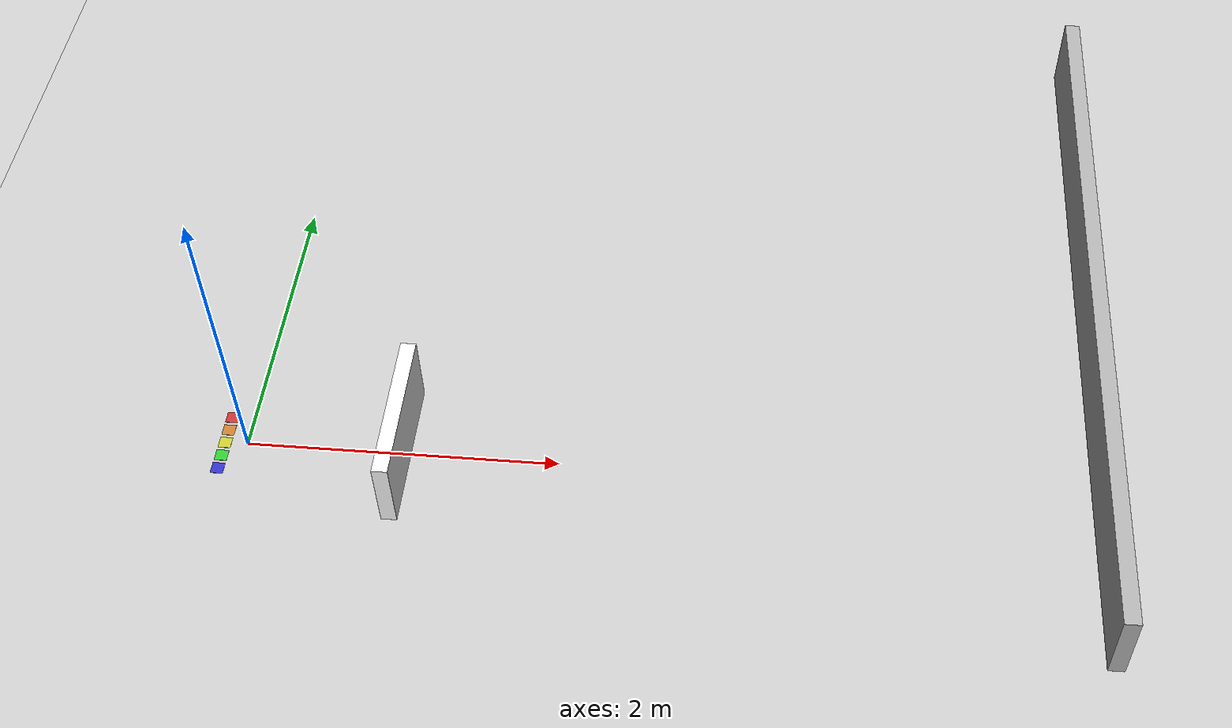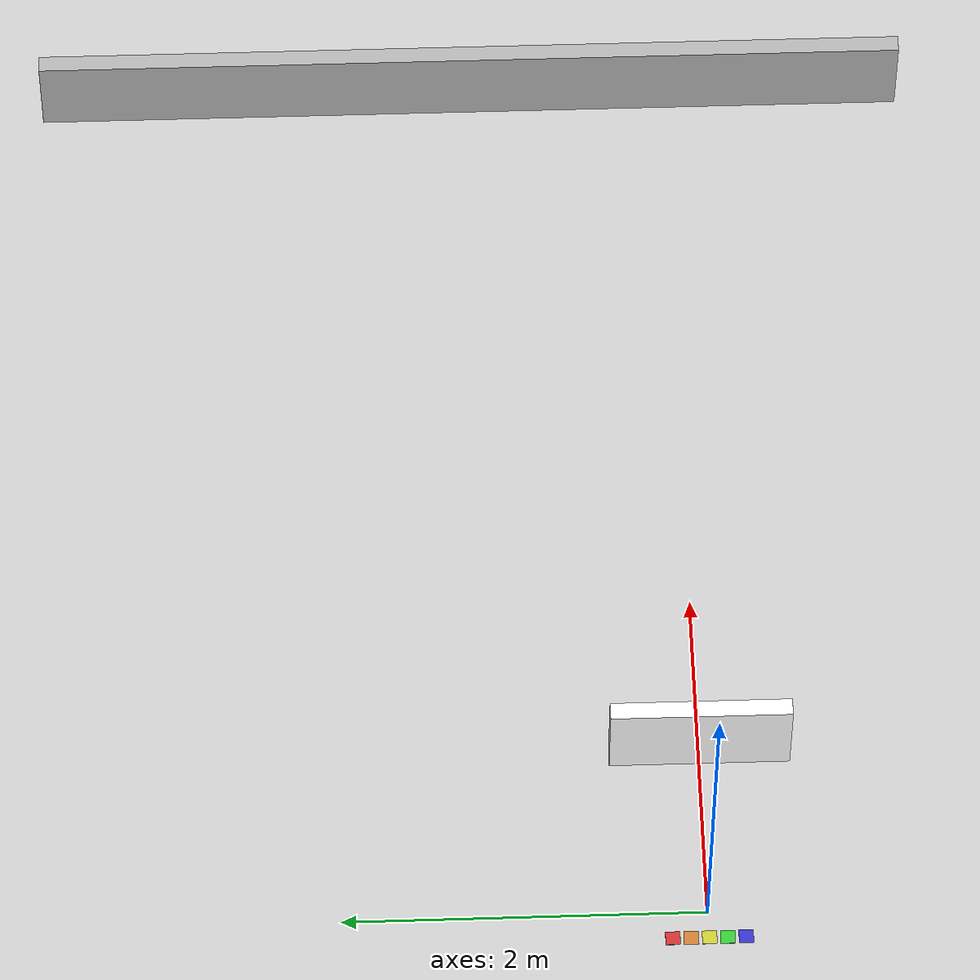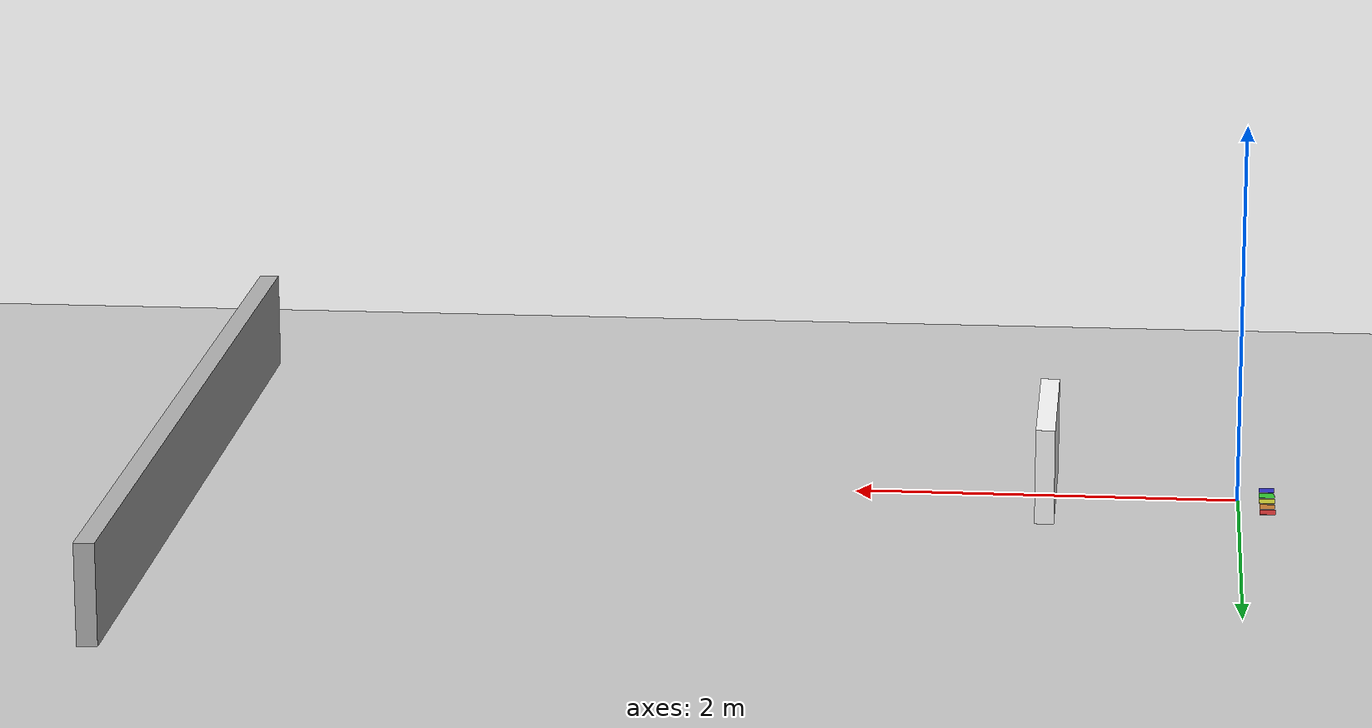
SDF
<?xml version="1.0" ?>
<sdf version='1.10'>
  <world name='final'>
    <physics name='1ms' type='ignored'>
      <max_step_size>0.01</max_step_size>
      <real_time_factor>1</real_time_factor>
      <real_time_update_rate>500</real_time_update_rate>
    </physics>
    <plugin name='gz::sim::systems::Physics' filename='gz-sim-physics-system'/>
    <plugin name='gz::sim::systems::UserCommands' filename='gz-sim-user-commands-system'/>
    <plugin name='gz::sim::systems::SceneBroadcaster' filename='gz-sim-scene-broadcaster-system'/>
    <plugin name='gz::sim::systems::Contact' filename='gz-sim-contact-system'/>
    <plugin name="gz::sim::systems::Sensors" filename="gz-sim-sensors-system">
      <render_engine>ogre2</render_engine>
    </plugin>
    <gravity>0 0 -9.8000000000000007</gravity>
    <magnetic_field>5.5644999999999998e-06 2.2875799999999999e-05 -4.2388400000000002e-05</magnetic_field>
    <atmosphere type='adiabatic'/>
    <scene>
      <ambient>0.400000006 0.400000006 0.400000006 1</ambient>
      <background>0.699999988 0.699999988 0.699999988 1</background>
      <shadows>true</shadows>
    </scene>
    <gui>
      <camera name='user_camera'>
        <pose>0 0 10 0 -1.5700000000004057 0</pose>
      </camera>
    </gui>

<model name='front_wall'>
      <pose>1.0 0 0.25 0 0 0</pose>
      <static>true</static>
      <link name='wall_link'>
        <!-- 벽 본체 -->
        <collision name='wall_collision'>
          <geometry>
            <box>
              <size>0.1 1.0 0.5</size>
            </box>
          </geometry>
        </collision>
        <visual name='wall_visual'>
          <geometry>
            <box>
              <size>0.1 1.0 0.5</size>
            </box>
          </geometry>
          <material>
            <!-- 순수한 흰색으로 설정 -->
            <ambient>1 1 1 1</ambient>
            <diffuse>1 1 1 1</diffuse>
            <specular>0.1 0.1 0.1 1</specular>
          </material>
        </visual>

      </link>
    </model>

    <model name='ground_plan_a'>
      <static>true</static>
      <link name='link'>
        <collision name='collision'>
          <geometry>
            <plane>
              <normal>0 0 1</normal>
              <size>100 100</size>
            </plane>
          </geometry>
          <surface>
            <friction>
              <ode/>
            </friction>
            <bounce/>
            <contact/>
          </surface>
        </collision>
        <visual name='visual'>
          <geometry>
            <plane>
              <normal>0 0 1</normal>
              <size>100 100</size>
            </plane>
          </geometry>
          <material>
            <ambient>0.800000012 0.800000012 0.800000012 1</ambient>
            <diffuse>0.800000012 0.800000012 0.800000012 1</diffuse>
            <specular>0.800000012 0.800000012 0.800000012 1</specular>
          </material>
        </visual>
        <pose>0 0 0 0 0 0</pose>
        <inertial>
          <pose>0 0 0 0 0 0</pose>
          <mass>1</mass>
          <inertia>
            <ixx>1</ixx>
            <ixy>0</ixy>
            <ixz>0</ixz>
            <iyy>1</iyy>
            <iyz>0</iyz>
            <izz>1</izz>
          </inertia>
        </inertial>
        <enable_wind>false</enable_wind>
      </link>
      <pose>0 0 0 0 0 0</pose>
      <self_collide>false</self_collide>
    </model>
    <model name='box'>
      <pose>5.3351101875305176 1.1423105628707289 0.49999964374511835 2.2249889111800282e-07 3.5031224552452505e-17 -6.3657622294056747e-17</pose>
      <link name='box_link'>
        <inertial>
          <inertia>
            <ixx>0.16666</ixx>
            <ixy>0</ixy>
            <ixz>0</ixz>
            <iyy>0.16666</iyy>
            <iyz>0</iyz>
            <izz>0.16666</izz>
          </inertia>
          <mass>1</mass>
          <pose>0 0 0 0 0 0</pose>
        </inertial>
        <collision name='box_collision'>
          <geometry>
            <box>
              <size>0.10000000000000001 5 0.5</size>
            </box>
          </geometry>
          <surface>
            <friction>
              <ode/>
            </friction>
            <bounce/>
            <contact/>
          </surface>
        </collision>
        <visual name='box_visual'>
          <geometry>
            <box>
              <size>0.10000000000000001 5 0.5</size>
            </box>
          </geometry>
          <material>
            <ambient>0.300000012 0.300000012 0.300000012 1</ambient>
            <diffuse>0.699999988 0.699999988 0.699999988 1</diffuse>
            <specular>1 1 1 1</specular>
          </material>
        </visual>
        <pose>0 0 0 0 0 0</pose>
        <enable_wind>false</enable_wind>
      </link>
      <static>false</static>
      <self_collide>false</self_collide>
    </model>

<!-- 6번 구역 (빨간색 계열) -->
    <model name="zone_6">
      <static>true</static>
      <pose>-0.15 0.20 0.001 0 0 0</pose>
      <link name="link">
        <visual name="visual">
          <geometry><box><size>0.08 0.08 0.002</size></box></geometry>
          <material><ambient>0.8 0.2 0.2 1</ambient><diffuse>0.8 0.2 0.2 1</diffuse></material>
        </visual>
      </link>
    </model>

    <!-- 7번 구역 (주황색 계열) -->
    <model name="zone_7">
      <static>true</static>
      <pose>-0.15 0.10 0.001 0 0 0</pose>
      <link name="link">
        <visual name="visual">
          <geometry><box><size>0.08 0.08 0.002</size></box></geometry>
          <material><ambient>0.8 0.5 0.2 1</ambient><diffuse>0.8 0.5 0.2 1</diffuse></material>
        </visual>
      </link>
    </model>

    <!-- 8번 구역 (노란색 계열 - 중앙) -->
    <model name="zone_8">
      <static>true</static>
      <pose>-0.15 0.00 0.001 0 0 0</pose>
      <link name="link">
        <visual name="visual">
          <geometry><box><size>0.08 0.08 0.002</size></box></geometry>
          <material><ambient>0.8 0.8 0.2 1</ambient><diffuse>0.8 0.8 0.2 1</diffuse></material>
        </visual>
      </link>
    </model>

    <!-- 9번 구역 (초록색 계열) -->
    <model name="zone_9">
      <static>true</static>
      <pose>-0.15 -0.10 0.001 0 0 0</pose>
      <link name="link">
        <visual name="visual">
          <geometry><box><size>0.08 0.08 0.002</size></box></geometry>
          <material><ambient>0.2 0.8 0.2 1</ambient><diffuse>0.2 0.8 0.2 1</diffuse></material>
        </visual>
      </link>
    </model>

    <!-- 10번 구역 (파란색 계열) -->
    <model name="zone_10">
      <static>true</static>
      <pose>-0.15 -0.20 0.001 0 0 0</pose>
      <link name="link">
        <visual name="visual">
          <geometry><box><size>0.08 0.08 0.002</size></box></geometry>
          <material><ambient>0.2 0.2 0.8 1</ambient><diffuse>0.2 0.2 0.8 1</diffuse></material>
        </visual>
      </link>
    </model>

<!-- 1. 전체 탑뷰 카메라 (위에서 아래로 수직으로 내려다봄) -->
    <model name="camera_top_model">
      <static>true</static>
      <!-- Z축 1m 높이에서 피치(Pitch)를 1.57(90도)로 꺾어 수직으로 바라봄 -->
      <pose>0.0 0.0 1.0 0 1.5708 0</pose>
      <link name="link">
        <sensor name="camera_top" type="camera">
          <camera>
            <horizontal_fov>1.2</horizontal_fov>
            <image><width>640</width><height>480</height></image>
            <clip><near>0.1</near><far>100</far></clip>
          </camera>
          <always_on>1</always_on><update_rate>30</update_rate><visualize>true</visualize>
          <topic>/camera_top/image_raw</topic>
        </sensor>
      </link>
    </model>

    <!-- 2. 큐브 뷰 카메라 (정면에 생성되는 큐브들을 집중해서 바라봄) -->
    <model name="camera_cube_model">
      <static>true</static>
      <!-- 로봇 앞쪽(X: 0.75)에서 로봇 방향(Yaw: -3.14)으로 비스듬히(Pitch: 0.5) 내려다봄 -->
      <pose>0.75 0.0 0.4 0 0.5 -3.1415</pose>
      <link name="link">
        <sensor name="camera_cube" type="camera">
          <camera>
            <horizontal_fov>1.0</horizontal_fov>
            <image><width>640</width><height>480</height></image>
            <clip><near>0.1</near><far>100</far></clip>
          </camera>
          <always_on>1</always_on><update_rate>30</update_rate><visualize>true</visualize>
          <topic>/camera_cube/image_raw</topic>
        </sensor>
      </link>
    </model>

    <!-- 3. 장소 뷰 카메라 (뒤쪽 6~10번 구역을 집중해서 바라봄) -->
    <model name="camera_place_model">
      <static>true</static>
      <!-- 로봇 뒤쪽(X: -0.75)에서 놓는 장소 방향(Yaw: 0)으로 비스듬히(Pitch: 0.5) 내려다봄 -->
      <pose>-0.75 0.0 0.4 0 0.5 0</pose>
      <link name="link">
        <sensor name="camera_place" type="camera">
          <camera>
            <horizontal_fov>1.0</horizontal_fov>
            <image><width>640</width><height>480</height></image>
            <clip><near>0.1</near><far>100</far></clip>
          </camera>
          <always_on>1</always_on><update_rate>30</update_rate><visualize>true</visualize>
          <topic>/camera_place/image_raw</topic>
        </sensor>
      </link>
    </model>

    <light name='sun' type='directional'>
      <pose>0 0 10 0 0 0</pose>
      <cast_shadows>true</cast_shadows>
      <intensity>1</intensity>
      <direction>-0.5 0.10000000000000001 -0.90000000000000002</direction>
      <diffuse>0.800000012 0.800000012 0.800000012 1</diffuse>
      <specular>0.200000003 0.200000003 0.200000003 1</specular>
      <attenuation>
        <range>1000</range>
        <linear>0.0099999997764825821</linear>
        <constant>0.89999997615814209</constant>
        <quadratic>0.0010000000474974513</quadratic>
      </attenuation>
      <spot>
        <inner_angle>0</inner_angle>
        <outer_angle>0</outer_angle>
        <falloff>0</falloff>
      </spot>
    </light>
  </world>
</sdf>
